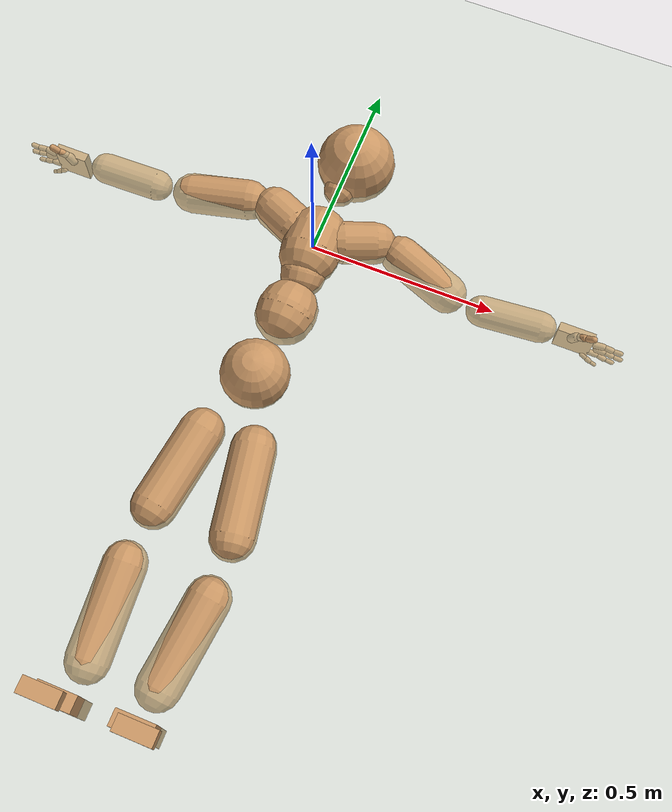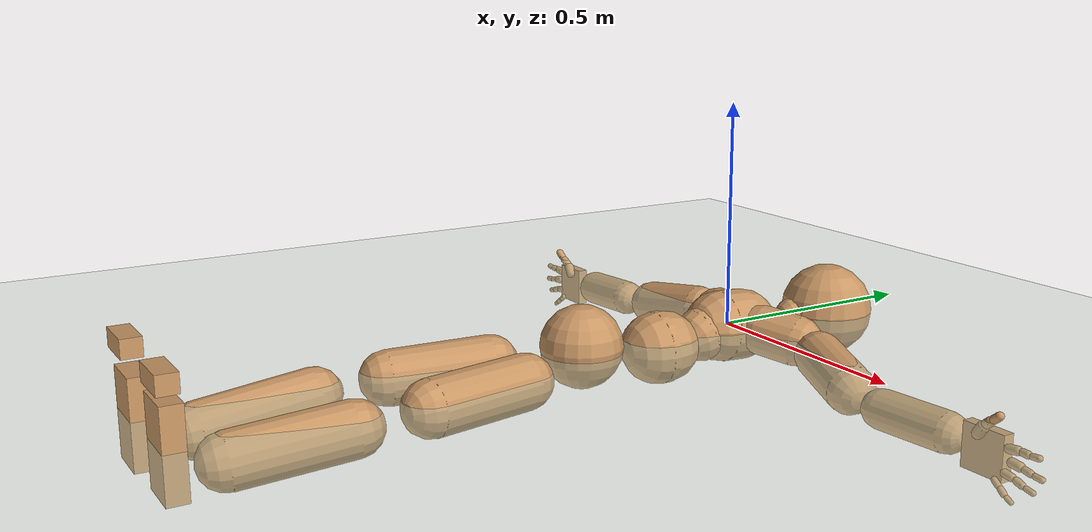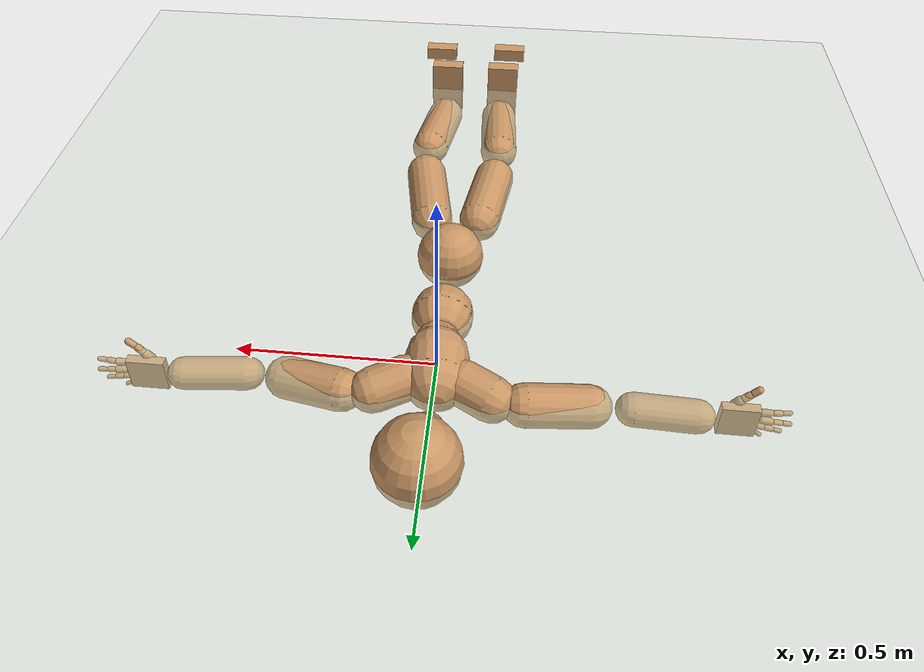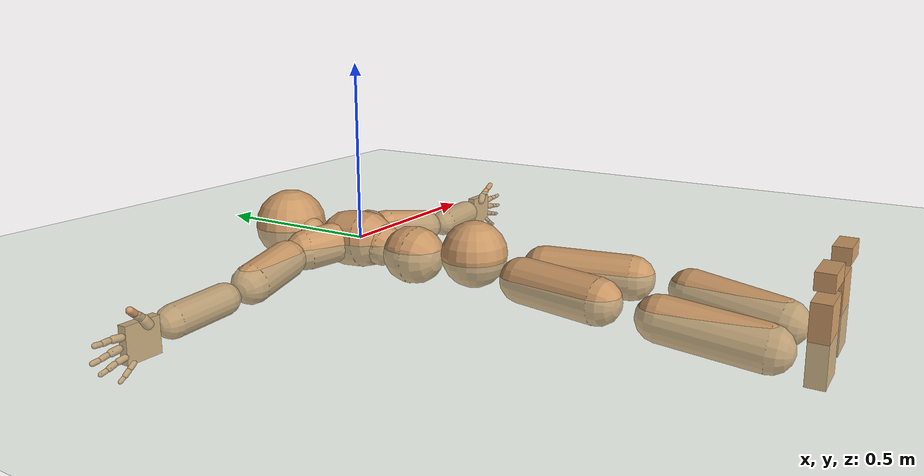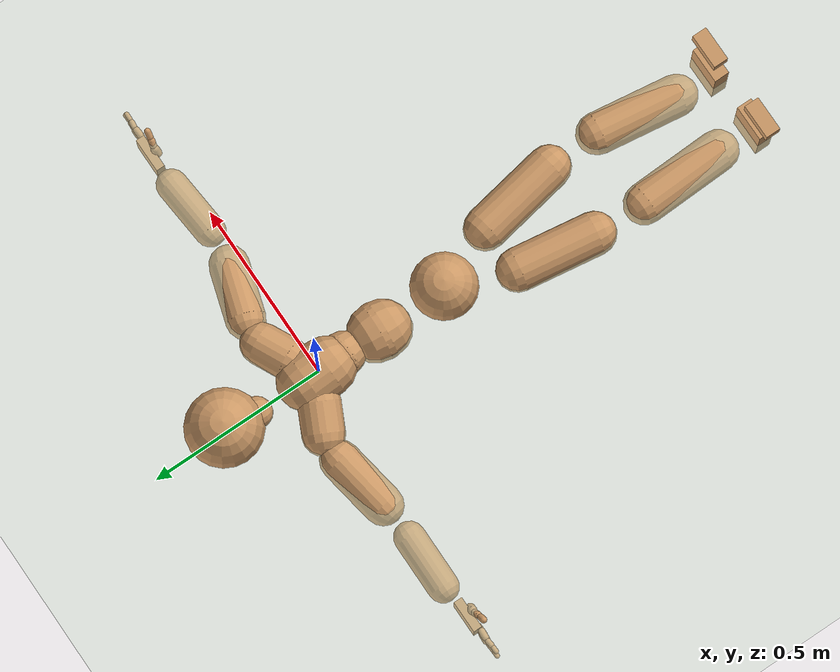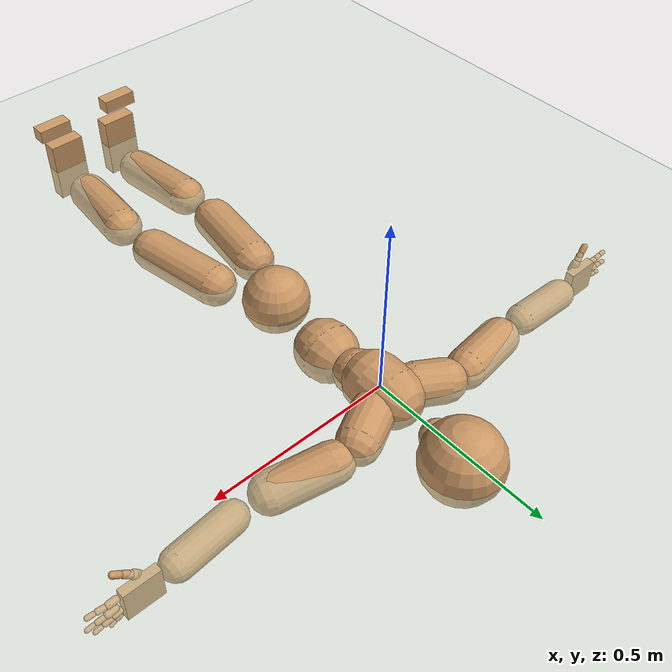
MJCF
<?xml version='1.0' encoding='utf-8'?>
<mujoco model="smplx_mapped_s29">
  <compiler coordinate="local" />
  <default>
    <joint damping="0.0" armature="0.01" stiffness="0.0" limited="true" />
    <geom conaffinity="1" condim="3" contype="7" margin="0.001" rgba="0.8 0.6 .4 1" />
  </default>
  <asset>
    <texture type="skybox" builtin="gradient" rgb1=".4 .5 .6" rgb2="0 0 0" width="100" height="100" />
    <texture builtin="flat" height="1278" mark="cross" markrgb="1 1 1" name="texgeom" random="0.01" rgb1="0.8 0.6 0.4" rgb2="0.8 0.6 0.4" type="cube" width="127" />
    <texture builtin="checker" height="100" name="texplane" rgb1="0 0 0" rgb2="0.8 0.8 0.8" type="2d" width="100" />
    <material name="MatPlane" reflectance="0.5" shininess="1" specular="1" texrepeat="60 60" texture="texplane" />
    <material name="geom" texture="texgeom" texuniform="true" />
  </asset>
  <worldbody>
    <light cutoff="100" diffuse="1 1 1" dir="-0 0 -1.3" directional="true" exponent="1" pos="0 0 1.3" specular=".1 .1 .1" />
    <geom conaffinity="1" condim="3" name="floor" pos="0 0 0" rgba="0.8 0.9 0.8 1" size="100 100 .2" type="plane" material="MatPlane" />
    <body name="Pelvis" pos="0.0010 -0.3891 0.0087">
      <freejoint name="Pelvis" />
      <geom type="sphere" contype="1" conaffinity="1" density="4629.6296296296305" size="0.09" pos="0.0000 0.0000 0.0000" name="Pelvis" />
      <body name="L_Hip" pos="0.0557 -0.0997 -0.0278">
        <joint name="L_Hip_x" type="hinge" pos="0 0 0" axis="1 0 0" stiffness="800" damping="80" armature="0.02" range="-180.00 180.00" />
        <joint name="L_Hip_y" type="hinge" pos="0 0 0" axis="0 1 0" stiffness="800" damping="80" armature="0.02" range="-180.00 180.00" />
        <joint name="L_Hip_z" type="hinge" pos="0 0 0" axis="0 0 1" stiffness="800" damping="80" armature="0.02" range="-180.00 180.00" />
        <geom type="capsule" contype="1" conaffinity="1" density="2040.816327" fromto="0.0138 -0.0760 -0.0005 0.0552 -0.3040 -0.0019" size="0.059" />
        <body name="L_Knee" pos="0.0691 -0.3799 -0.0024">
          <joint name="L_Knee_x" type="hinge" pos="0 0 0" axis="1 0 0" stiffness="800" damping="80" armature="0.02" range="-180.00 180.00" />
          <joint name="L_Knee_y" type="hinge" pos="0 0 0" axis="0 1 0" stiffness="800" damping="80" armature="0.02" range="-180.00 180.00" />
          <joint name="L_Knee_z" type="hinge" pos="0 0 0" axis="0 0 1" stiffness="800" damping="80" armature="0.02" range="-180.00 180.00" />
          <geom type="capsule" contype="1" conaffinity="1" density="1234.567901" fromto="-0.0095 -0.0774 -0.0084 -0.0382 -0.3098 -0.0334" size="0.0564" />
          <body name="L_Ankle" pos="-0.0477 -0.3872 -0.0418">
            <joint name="L_Ankle_x" type="hinge" pos="0 0 0" axis="1 0 0" stiffness="800" damping="80" armature="0.02" range="-180.00 180.00" />
            <joint name="L_Ankle_y" type="hinge" pos="0 0 0" axis="0 1 0" stiffness="800" damping="80" armature="0.02" range="-180.00 180.00" />
            <joint name="L_Ankle_z" type="hinge" pos="0 0 0" axis="0 0 1" stiffness="800" damping="80" armature="0.02" range="-180.00 180.00" />
            <geom type="box" contype="1" conaffinity="1" density="1000" pos="0.0115 -0.0234 0.0566" size="0.0502 0.0216 0.0909" quat="1.0000 0.0000 0.0000 0.0000" />
            <body name="L_Toe" pos="0.0443 -0.0546 0.1327">
              <joint name="L_Toe_x" type="hinge" pos="0 0 0" axis="1 0 0" stiffness="500" damping="50" armature="0.02" range="-180.00 180.00" />
              <joint name="L_Toe_y" type="hinge" pos="0 0 0" axis="0 1 0" stiffness="500" damping="50" armature="0.02" range="-180.00 180.00" />
              <joint name="L_Toe_z" type="hinge" pos="0 0 0" axis="0 0 1" stiffness="500" damping="50" armature="0.02" range="-180.00 180.00" />
              <geom type="box" contype="1" conaffinity="1" density="1000" pos="-0.0115 0.0227 0.0576" size="0.0493 0.0209 0.0194" quat="1.0000 0.0000 0.0000 0.0000" />
            </body>
          </body>
        </body>
      </body>
      <body name="R_Hip" pos="-0.0572 -0.1105 -0.0211">
        <joint name="R_Hip_x" type="hinge" pos="0 0 0" axis="1 0 0" stiffness="800" damping="80" armature="0.02" range="-180.00 180.00" />
        <joint name="R_Hip_y" type="hinge" pos="0 0 0" axis="0 1 0" stiffness="800" damping="80" armature="0.02" range="-180.00 180.00" />
        <joint name="R_Hip_z" type="hinge" pos="0 0 0" axis="0 0 1" stiffness="800" damping="80" armature="0.02" range="-180.00 180.00" />
        <geom type="capsule" contype="1" conaffinity="1" density="2040.816327" fromto="-0.0105 -0.0727 -0.0020 -0.0421 -0.2908 -0.0082" size="0.0588" />
        <body name="R_Knee" pos="-0.0526 -0.3635 -0.0102">
          <joint name="R_Knee_x" type="hinge" pos="0 0 0" axis="1 0 0" stiffness="800" damping="80" armature="0.02" range="-180.00 180.00" />
          <joint name="R_Knee_y" type="hinge" pos="0 0 0" axis="0 1 0" stiffness="800" damping="80" armature="0.02" range="-180.00 180.00" />
          <joint name="R_Knee_z" type="hinge" pos="0 0 0" axis="0 0 1" stiffness="800" damping="80" armature="0.02" range="-180.00 180.00" />
          <geom type="capsule" contype="1" conaffinity="1" density="1234.567901" fromto="0.0038 -0.0799 -0.0081 0.0153 -0.3197 -0.0322" size="0.0564" />
          <body name="R_Ankle" pos="0.0192 -0.3997 -0.0403">
            <joint name="R_Ankle_x" type="hinge" pos="0 0 0" axis="1 0 0" stiffness="800" damping="80" armature="0.02" range="-180.00 180.00" />
            <joint name="R_Ankle_y" type="hinge" pos="0 0 0" axis="0 1 0" stiffness="800" damping="80" armature="0.02" range="-180.00 180.00" />
            <joint name="R_Ankle_z" type="hinge" pos="0 0 0" axis="0 0 1" stiffness="800" damping="80" armature="0.02" range="-180.00 180.00" />
            <geom type="box" contype="1" conaffinity="1" density="1000" pos="-0.0091 -0.0250 0.0535" size="0.0502 0.0216 0.0909" quat="1.0000 0.0000 0.0000 0.0000" />
            <body name="R_Toe" pos="-0.0351 -0.0542 0.1391">
              <joint name="R_Toe_x" type="hinge" pos="0 0 0" axis="1 0 0" stiffness="500" damping="50" armature="0.02" range="-180.00 180.00" />
              <joint name="R_Toe_y" type="hinge" pos="0 0 0" axis="0 1 0" stiffness="500" damping="50" armature="0.02" range="-180.00 180.00" />
              <joint name="R_Toe_z" type="hinge" pos="0 0 0" axis="0 0 1" stiffness="500" damping="50" armature="0.02" range="-180.00 180.00" />
              <geom type="box" contype="1" conaffinity="1" density="1000" pos="0.0091 0.0243 0.0545" size="0.0493 0.0209 0.0194" quat="1.0000 0.0000 0.0000 0.0000" />
            </body>
          </body>
        </body>
      </body>
      <body name="Torso" pos="-0.0019 0.1184 -0.0357">
        <joint name="Torso_x" type="hinge" pos="0 0 0" axis="1 0 0" stiffness="1000" damping="100" armature="0.02" range="-180.00 180.00" />
        <joint name="Torso_y" type="hinge" pos="0 0 0" axis="0 1 0" stiffness="1000" damping="100" armature="0.02" range="-180.00 180.00" />
        <joint name="Torso_z" type="hinge" pos="0 0 0" axis="0 0 1" stiffness="1000" damping="100" armature="0.02" range="-180.00 180.00" />
        <geom type="capsule" contype="1" conaffinity="1" density="1100" fromto="0.0038 0.0735 0.0024 0.0046 0.0899 0.0030" size="0.08" />
        <body name="Spine" pos="0.0084 0.1634 0.0054">
          <joint name="Spine_x" type="hinge" pos="0 0 0" axis="1 0 0" stiffness="1000" damping="100" armature="0.02" range="-180.00 180.00" />
          <joint name="Spine_y" type="hinge" pos="0 0 0" axis="0 1 0" stiffness="1000" damping="100" armature="0.02" range="-180.00 180.00" />
          <joint name="Spine_z" type="hinge" pos="0 0 0" axis="0 0 1" stiffness="1000" damping="100" armature="0.02" range="-180.00 180.00" />
          <geom type="capsule" contype="1" conaffinity="1" density="1100" fromto="-0.0032 0.0284 0.0093 -0.0039 0.0347 0.0114" size="0.06" />
          <body name="Chest" pos="-0.0071 0.0630 0.0207">
            <joint name="Chest_x" type="hinge" pos="0 0 0" axis="1 0 0" stiffness="1000" damping="100" armature="0.02" range="-180.00 180.00" />
            <joint name="Chest_y" type="hinge" pos="0 0 0" axis="0 1 0" stiffness="1000" damping="100" armature="0.02" range="-180.00 180.00" />
            <joint name="Chest_z" type="hinge" pos="0 0 0" axis="0 0 1" stiffness="1000" damping="100" armature="0.02" range="-180.00 180.00" />
            <geom type="capsule" contype="1" conaffinity="1" density="1100" fromto="-0.0007 0.0211 -0.0012 -0.0028 0.0844 -0.0049" size="0.08" />
            <body name="Neck" pos="-0.0084 0.1633 -0.0161">
              <joint name="Neck_x" type="hinge" pos="0 0 0" axis="1 0 0" stiffness="500" damping="50" armature="0.02" range="-180.00 180.00" />
              <joint name="Neck_y" type="hinge" pos="0 0 0" axis="0 1 0" stiffness="500" damping="50" armature="0.02" range="-180.00 180.00" />
              <joint name="Neck_z" type="hinge" pos="0 0 0" axis="0 0 1" stiffness="500" damping="50" armature="0.02" range="-180.00 180.00" />
              <geom type="capsule" contype="1" conaffinity="1" density="1000" fromto="0.0102 0.0732 0.0075 0.0124 0.0895 0.0091" size="0.0437" />
              <body name="Head" pos="0.0226 0.1627 0.0166">
                <joint name="Head_x" type="hinge" pos="0 0 0" axis="1 0 0" stiffness="500" damping="50" armature="0.02" range="-180.00 180.00" />
                <joint name="Head_y" type="hinge" pos="0 0 0" axis="0 1 0" stiffness="500" damping="50" armature="0.02" range="-180.00 180.00" />
                <joint name="Head_z" type="hinge" pos="0 0 0" axis="0 0 1" stiffness="500" damping="50" armature="0.02" range="-180.00 180.00" />
                <geom type="sphere" contype="1" conaffinity="1" density="1000" size="0.1054" pos="0.0000 0.0000 0.0000" name="Head" />
              </body>
            </body>
            <body name="L_Thorax" pos="0.0398 0.0763 0.0009">
              <joint name="L_Thorax_x" type="hinge" pos="0 0 0" axis="1 0 0" stiffness="500" damping="50" armature="0.02" range="-180.00 180.00" />
              <joint name="L_Thorax_y" type="hinge" pos="0 0 0" axis="0 1 0" stiffness="500" damping="50" armature="0.02" range="-180.00 180.00" />
              <joint name="L_Thorax_z" type="hinge" pos="0 0 0" axis="0 0 1" stiffness="500" damping="50" armature="0.02" range="-180.00 180.00" />
              <geom type="capsule" contype="1" conaffinity="1" density="1000" fromto="0.0264 0.0123 -0.0041 0.1056 0.0493 -0.0163" size="0.0564" />
              <body name="L_Shoulder" pos="0.1320 0.0616 -0.0204">
                <joint name="L_Shoulder_x" type="hinge" pos="0 0 0" axis="1 0 0" stiffness="500" damping="50" armature="0.02" range="-180.00 180.00" />
                <joint name="L_Shoulder_y" type="hinge" pos="0 0 0" axis="0 1 0" stiffness="500" damping="50" armature="0.02" range="-180.00 180.00" />
                <joint name="L_Shoulder_z" type="hinge" pos="0 0 0" axis="0 0 1" stiffness="500" damping="50" armature="0.02" range="-180.00 180.00" />
                <geom type="capsule" contype="1" conaffinity="1" density="1000" fromto="0.0493 -0.0153 -0.0086 0.1974 -0.0611 -0.0343" size="0.0533" />
                <body name="L_Elbow" pos="0.2467 -0.0763 -0.0429">
                  <joint name="L_Elbow_x" type="hinge" pos="0 0 0" axis="1 0 0" stiffness="500" damping="50" armature="0.02" range="-180.00 180.00" />
                  <joint name="L_Elbow_y" type="hinge" pos="0 0 0" axis="0 1 0" stiffness="500" damping="50" armature="0.02" range="-180.00 180.00" />
                  <joint name="L_Elbow_z" type="hinge" pos="0 0 0" axis="0 0 1" stiffness="500" damping="50" armature="0.02" range="-180.00 180.00" />
                  <geom type="capsule" contype="1" conaffinity="1" density="1000" fromto="0.0530 0.0049 -0.0003 0.2121 0.0195 -0.0010" size="0.0418" />
                  <body name="L_Wrist" pos="0.252 0.0232 -0.0025">
                    <joint name="L_Wrist_x" type="hinge" pos="0 0 0" axis="1 0 0" stiffness="300" damping="30" armature="0.02" range="-180.0000 180.0000"/>
                    <joint name="L_Wrist_y" type="hinge" pos="0 0 0" axis="0 1 0" stiffness="300" damping="30" armature="0.02" range="-180.0000 180.0000"/>
                    <joint name="L_Wrist_z" type="hinge" pos="0 0 0" axis="0 0 1" stiffness="300" damping="30" armature="0.02" range="-180.0000 180.0000"/>
                    <geom type="box" density="1198.335972" pos="0.0523 -0.0013 -0.0031" size="0.0484 0.0122 0.046" quat="1.0000 0.0000 0.0000 0.0000" name="L_Wrist"/>
                    <body name="L_Index1" pos="0.1019 -0.0087 0.0194">
                      <joint name="L_Index1_x" type="hinge" pos="0 0 0" axis="1 0 0" stiffness="100" damping="10" armature="0.02" range="-5.6250 5.6250"/>
                      <joint name="L_Index1_y" type="hinge" pos="0 0 0" axis="0 1 0" stiffness="100" damping="10" armature="0.02" range="-5.6250 5.6250"/>
                      <joint name="L_Index1_z" type="hinge" pos="0 0 0" axis="0 0 1" stiffness="100" damping="10" armature="0.02" range="-55.6250 55.6250"/>
                      <geom type="capsule" contype="1" conaffinity="1" density="1000" fromto="0.0064 0.0004 0.0006 0.0256 0.0018 0.0024" size="0.0091" name="L_Index1"/>
                      <body name="L_Index2" pos="0.0319 0.0022 0.003">
                        <joint name="L_Index2_x" type="hinge" pos="0 0 0" axis="1 0 0" stiffness="100" damping="10" armature="0.02" range="-5.6250 5.6250"/>
                        <joint name="L_Index2_y" type="hinge" pos="0 0 0" axis="0 1 0" stiffness="100" damping="10" armature="0.02" range="-5.6250 5.6250"/>
                        <joint name="L_Index2_z" type="hinge" pos="0 0 0" axis="0 0 1" stiffness="100" damping="10" armature="0.02" range="-55.6250 55.6250"/>
                        <geom type="capsule" contype="1" conaffinity="1" density="1000" fromto="0.0045 -0.0005 0.0000 0.0180 -0.0019 0.0000" size="0.0076" name="L_Index2"/>
                        <body name="L_Index3" pos="0.0225 -0.0024 0.0001">
                          <joint name="L_Index3_x" type="hinge" pos="0 0 0" axis="1 0 0" stiffness="100" damping="10" armature="0.02" range="-5.6250 5.6250"/>
                          <joint name="L_Index3_y" type="hinge" pos="0 0 0" axis="0 1 0" stiffness="100" damping="10" armature="0.02" range="-5.6250 5.6250"/>
                          <joint name="L_Index3_z" type="hinge" pos="0 0 0" axis="0 0 1" stiffness="100" damping="10" armature="0.02" range="-90.0000 5.6250"/>
                          <geom type="capsule" contype="1" conaffinity="1" density="1000" fromto="0.0049 -0.0001 0.0004 0.0196 -0.0003 0.0016" size="0.0064" name="L_Index3"/>
                        </body>
                      </body>
                    </body>
                    <body name="L_Middle1" pos="0.1094 -0.0063 -0.004">
                      <joint name="L_Middle1_x" type="hinge" pos="0 0 0" axis="1 0 0" stiffness="100" damping="10" armature="0.02" range="-5.6250 5.6250"/>
                      <joint name="L_Middle1_y" type="hinge" pos="0 0 0" axis="0 1 0" stiffness="100" damping="10" armature="0.02" range="-5.6250 5.6250"/>
                      <joint name="L_Middle1_z" type="hinge" pos="0 0 0" axis="0 0 1" stiffness="100" damping="10" armature="0.02" range="-55.6250 55.6250"/>
                      <geom type="capsule" contype="1" conaffinity="1" density="1000" fromto="0.0061 0.0002 -0.0008 0.0245 0.0006 -0.0032" size="0.0094" name="L_Middle1"/>
                      <body name="L_Middle2" pos="0.0306 0.0008 -0.004">
                        <joint name="L_Middle2_x" type="hinge" pos="0 0 0" axis="1 0 0" stiffness="100" damping="10" armature="0.02" range="-5.6250 5.6250"/>
                        <joint name="L_Middle2_y" type="hinge" pos="0 0 0" axis="0 1 0" stiffness="100" damping="10" armature="0.02" range="-5.6250 5.6250"/>
                        <joint name="L_Middle2_z" type="hinge" pos="0 0 0" axis="0 0 1" stiffness="100" damping="10" armature="0.02" range="-55.6250 55.6250"/>
                        <geom type="capsule" contype="1" conaffinity="1" density="1000" fromto="0.0047 -0.0004 -0.0008 0.0188 -0.0016 -0.0033" size="0.007" name="L_Middle2"/>
                        <body name="L_Middle3" pos="0.0235 -0.002 -0.0041">
                          <joint name="L_Middle3_x" type="hinge" pos="0 0 0" axis="1 0 0" stiffness="100" damping="10" armature="0.02" range="-5.6250 5.6250"/>
                          <joint name="L_Middle3_y" type="hinge" pos="0 0 0" axis="0 1 0" stiffness="100" damping="10" armature="0.02" range="-5.6250 5.6250"/>
                          <joint name="L_Middle3_z" type="hinge" pos="0 0 0" axis="0 0 1" stiffness="100" damping="10" armature="0.02" range="-90.0000 5.6250"/>
                          <geom type="capsule" contype="1" conaffinity="1" density="1000" fromto="0.0051 -0.0000 -0.0004 0.0204 -0.0000 -0.0017" size="0.0061" name="L_Middle3"/>
                        </body>
                      </body>
                    </body>
                    <body name="L_Pinky1" pos="0.084 -0.0145 -0.0437">
                      <joint name="L_Pinky1_x" type="hinge" pos="0 0 0" axis="1 0 0" stiffness="100" damping="10" armature="0.02" range="-5.6250 5.6250"/>
                      <joint name="L_Pinky1_y" type="hinge" pos="0 0 0" axis="0 1 0" stiffness="100" damping="10" armature="0.02" range="-5.6250 5.6250"/>
                      <joint name="L_Pinky1_z" type="hinge" pos="0 0 0" axis="0 0 1" stiffness="100" damping="10" armature="0.02" range="-55.6250 55.6250"/>
                      <geom type="capsule" contype="1" conaffinity="1" density="1000" fromto="0.0031 -0.0002 -0.0024 0.0124 -0.0009 -0.0096" size="0.0067" name="L_Pinky1"/>
                      <body name="L_Pinky2" pos="0.0155 -0.0011 -0.012">
                        <joint name="L_Pinky2_x" type="hinge" pos="0 0 0" axis="1 0 0" stiffness="100" damping="10" armature="0.02" range="-5.6250 5.6250"/>
                        <joint name="L_Pinky2_y" type="hinge" pos="0 0 0" axis="0 1 0" stiffness="100" damping="10" armature="0.02" range="-5.6250 5.6250"/>
                        <joint name="L_Pinky2_z" type="hinge" pos="0 0 0" axis="0 0 1" stiffness="100" damping="10" armature="0.02" range="-55.6250 55.6250"/>
                        <geom type="capsule" contype="1" conaffinity="1" density="1000" fromto="0.0031 -0.0003 -0.0022 0.0124 -0.0013 -0.0090" size="0.0065" name="L_Pinky2"/>
                        <body name="L_Pinky3" pos="0.0155 -0.0017 -0.0112">
                          <joint name="L_Pinky3_x" type="hinge" pos="0 0 0" axis="1 0 0" stiffness="100" damping="10" armature="0.02" range="-5.6250 5.6250"/>
                          <joint name="L_Pinky3_y" type="hinge" pos="0 0 0" axis="0 1 0" stiffness="100" damping="10" armature="0.02" range="-5.6250 5.6250"/>
                          <joint name="L_Pinky3_z" type="hinge" pos="0 0 0" axis="0 0 1" stiffness="100" damping="10" armature="0.02" range="-90.0000 5.6250"/>
                          <geom type="capsule" contype="1" conaffinity="1" density="1000" fromto="0.0035 0.0001 -0.0018 0.0140 0.0003 -0.0074" size="0.005" name="L_Pinky3"/>
                        </body>
                      </body>
                    </body>
                    <body name="L_Ring1" pos="0.0974 -0.0093 -0.0273">
                      <joint name="L_Ring1_x" type="hinge" pos="0 0 0" axis="1 0 0" stiffness="100" damping="10" armature="0.02" range="-5.6250 5.6250"/>
                      <joint name="L_Ring1_y" type="hinge" pos="0 0 0" axis="0 1 0" stiffness="100" damping="10" armature="0.02" range="-5.6250 5.6250"/>
                      <joint name="L_Ring1_z" type="hinge" pos="0 0 0" axis="0 0 1" stiffness="100" damping="10" armature="0.02" range="-55.6250 55.6250"/>
                      <geom type="capsule" contype="1" conaffinity="1" density="1000" fromto="0.0056 0.0003 -0.0011 0.0224 0.0012 -0.0042" size="0.008" name="L_Ring1"/>
                      <body name="L_Ring2" pos="0.028 0.0015 -0.0053">
                        <joint name="L_Ring2_x" type="hinge" pos="0 0 0" axis="1 0 0" stiffness="100" damping="10" armature="0.02" range="-5.6250 5.6250"/>
                        <joint name="L_Ring2_y" type="hinge" pos="0 0 0" axis="0 1 0" stiffness="100" damping="10" armature="0.02" range="-5.6250 5.6250"/>
                        <joint name="L_Ring2_z" type="hinge" pos="0 0 0" axis="0 0 1" stiffness="100" damping="10" armature="0.02" range="-55.6250 55.6250"/>
                        <geom type="capsule" contype="1" conaffinity="1" density="1000" fromto="0.0046 -0.0003 -0.0014 0.0183 -0.0012 -0.0057" size="0.0074" name="L_Ring2"/>
                        <body name="L_Ring3" pos="0.0228 -0.0015 -0.0071">
                          <joint name="L_Ring3_x" type="hinge" pos="0 0 0" axis="1 0 0" stiffness="100" damping="10" armature="0.02" range="-5.6250 5.6250"/>
                          <joint name="L_Ring3_y" type="hinge" pos="0 0 0" axis="0 1 0" stiffness="100" damping="10" armature="0.02" range="-5.6250 5.6250"/>
                          <joint name="L_Ring3_z" type="hinge" pos="0 0 0" axis="0 0 1" stiffness="100" damping="10" armature="0.02" range="-90.0000 5.6250"/>
                          <geom type="capsule" contype="1" conaffinity="1" density="1000" fromto="0.0050 0.0001 -0.0010 0.0199 0.0004 -0.0041" size="0.0057" name="L_Ring3"/>
                        </body>
                      </body>
                    </body>
                    <body name="L_Thumb1" pos="0.0406 -0.018 0.0256">
                      <joint name="L_Thumb1_x" type="hinge" pos="0 0 0" axis="1 0 0" stiffness="100" damping="10" armature="0.02" range="-55.6250 55.6250"/>
                      <joint name="L_Thumb1_y" type="hinge" pos="0 0 0" axis="0 1 0" stiffness="100" damping="10" armature="0.02" range="-55.6250 55.6250"/>
                      <joint name="L_Thumb1_z" type="hinge" pos="0 0 0" axis="0 0 1" stiffness="100" damping="10" armature="0.02" range="-55.6250 55.6250"/>
                      <geom type="capsule" contype="1" conaffinity="1" density="1000" fromto="0.0034 0.0002 0.0050 0.0136 0.0008 0.0200" size="0.012" name="L_Thumb1"/>
                      <body name="L_Thumb2" pos="0.017 0.001 0.025">
                        <joint name="L_Thumb2_x" type="hinge" pos="0 0 0" axis="1 0 0" stiffness="100" damping="10" armature="0.02" range="-5.6250 5.6250"/>
                        <joint name="L_Thumb2_y" type="hinge" pos="0 0 0" axis="0 1 0" stiffness="100" damping="10" armature="0.02" range="-5.6250 5.6250"/>
                        <joint name="L_Thumb2_z" type="hinge" pos="0 0 0" axis="0 0 1" stiffness="100" damping="10" armature="0.02" range="-5.6250 5.6250"/>
                        <geom type="capsule" contype="1" conaffinity="1" density="1000" fromto="0.0041 -0.0010 0.0031 0.0164 -0.0041 0.0124" size="0.0095" name="L_Thumb2"/>
                        <body name="L_Thumb3" pos="0.0205 -0.0052 0.0155">
                          <joint name="L_Thumb3_x" type="hinge" pos="0 0 0" axis="1 0 0" stiffness="100" damping="10" armature="0.02" range="-5.6250 5.6250"/>
                          <joint name="L_Thumb3_y" type="hinge" pos="0 0 0" axis="0 1 0" stiffness="100" damping="10" armature="0.02" range="-5.6250 5.6250"/>
                          <joint name="L_Thumb3_z" type="hinge" pos="0 0 0" axis="0 0 1" stiffness="100" damping="10" armature="0.02" range="-90.0000 5.6250"/>
                          <geom type="capsule" contype="1" conaffinity="1" density="1000" fromto="0.0045 -0.0006 0.0035 0.0180 -0.0025 0.0140" size="0.0087" name="L_Thumb3"/>
                        </body>
                      </body>
                    </body>
                  </body>
                </body>
              </body>
            </body>
            <body name="R_Thorax" pos="-0.0420 0.0768 -0.0031">
              <joint name="R_Thorax_x" type="hinge" pos="0 0 0" axis="1 0 0" stiffness="500" damping="50" armature="0.02" range="-180.00 180.00" />
              <joint name="R_Thorax_y" type="hinge" pos="0 0 0" axis="0 1 0" stiffness="500" damping="50" armature="0.02" range="-180.00 180.00" />
              <joint name="R_Thorax_z" type="hinge" pos="0 0 0" axis="0 0 1" stiffness="500" damping="50" armature="0.02" range="-180.00 180.00" />
              <geom type="capsule" contype="1" conaffinity="1" density="1000" fromto="-0.0246 0.0120 -0.0031 -0.0986 0.0480 -0.0122" size="0.0576" />
              <body name="R_Shoulder" pos="-0.1232 0.0600 -0.0153">
                <joint name="R_Shoulder_x" type="hinge" pos="0 0 0" axis="1 0 0" stiffness="500" damping="50" armature="0.02" range="-180.00 180.00" />
                <joint name="R_Shoulder_y" type="hinge" pos="0 0 0" axis="0 1 0" stiffness="500" damping="50" armature="0.02" range="-180.00 180.00" />
                <joint name="R_Shoulder_z" type="hinge" pos="0 0 0" axis="0 0 1" stiffness="500" damping="50" armature="0.02" range="-180.00 180.00" />
                <geom type="capsule" contype="1" conaffinity="1" density="1000" fromto="-0.0525 -0.0095 -0.0065 -0.2099 -0.0379 -0.0261" size="0.0538" />
                <body name="R_Elbow" pos="-0.2623 -0.0474 -0.0327">
                  <joint name="R_Elbow_x" type="hinge" pos="0 0 0" axis="1 0 0" stiffness="500" damping="50" armature="0.02" range="-180.00 180.00" />
                  <joint name="R_Elbow_y" type="hinge" pos="0 0 0" axis="0 1 0" stiffness="500" damping="50" armature="0.02" range="-180.00 180.00" />
                  <joint name="R_Elbow_z" type="hinge" pos="0 0 0" axis="0 0 1" stiffness="500" damping="50" armature="0.02" range="-180.00 180.00" />
                  <geom type="capsule" contype="1" conaffinity="1" density="1000" fromto="-0.0514 0.0000 -0.0024 -0.2058 0.0001 -0.0095" size="0.042" />
                  <body name="R_Wrist" pos="-0.2493 -0.0045 -0.0153">
                    <joint name="R_Wrist_x" type="hinge" pos="0 0 0" axis="1 0 0" stiffness="300" damping="30" armature="0.02" range="-180.0000 180.0000"/>
                    <joint name="R_Wrist_y" type="hinge" pos="0 0 0" axis="0 1 0" stiffness="300" damping="30" armature="0.02" range="-180.0000 180.0000"/>
                    <joint name="R_Wrist_z" type="hinge" pos="0 0 0" axis="0 0 1" stiffness="300" damping="30" armature="0.02" range="-180.0000 180.0000"/>
                    <geom type="box" density="1230.822844" pos="-0.0537 -0.0044 -0.0029" size="0.0454 0.0122 0.046" quat="1.0000 0.0000 0.0000 0.0000" name="R_Wrist"/>
                    <body name="R_Index1" pos="-0.0999 -0.0118 0.0196">
                      <joint name="R_Index1_x" type="hinge" pos="0 0 0" axis="1 0 0" stiffness="100" damping="10" armature="0.02" range="-5.6250 5.6250"/>
                      <joint name="R_Index1_y" type="hinge" pos="0 0 0" axis="0 1 0" stiffness="100" damping="10" armature="0.02" range="-5.6250 5.6250"/>
                      <joint name="R_Index1_z" type="hinge" pos="0 0 0" axis="0 0 1" stiffness="100" damping="10" armature="0.02" range="-55.6250 55.6250"/>
                      <geom type="capsule" contype="1" conaffinity="1" density="1000" fromto="-0.0064 0.0004 0.0006 -0.0256 0.0018 0.0024" size="0.0091" name="R_Index1"/>
                      <body name="R_Index2" pos="-0.0319 0.0022 0.003">
                        <joint name="R_Index2_x" type="hinge" pos="0 0 0" axis="1 0 0" stiffness="100" damping="10" armature="0.02" range="-5.6250 5.6250"/>
                        <joint name="R_Index2_y" type="hinge" pos="0 0 0" axis="0 1 0" stiffness="100" damping="10" armature="0.02" range="-5.6250 5.6250"/>
                        <joint name="R_Index2_z" type="hinge" pos="0 0 0" axis="0 0 1" stiffness="100" damping="10" armature="0.02" range="-55.6250 55.6250"/>
                        <geom type="capsule" contype="1" conaffinity="1" density="1000" fromto="-0.0045 -0.0005 0.0000 -0.0180 -0.0019 0.0000" size="0.0076" name="R_Index2"/>
                        <body name="R_Index3" pos="-0.0225 -0.0023 0.0001">
                          <joint name="R_Index3_x" type="hinge" pos="0 0 0" axis="1 0 0" stiffness="100" damping="10" armature="0.02" range="-5.6250 5.6250"/>
                          <joint name="R_Index3_y" type="hinge" pos="0 0 0" axis="0 1 0" stiffness="100" damping="10" armature="0.02" range="-5.6250 5.6250"/>
                          <joint name="R_Index3_z" type="hinge" pos="0 0 0" axis="0 0 1" stiffness="100" damping="10" armature="0.02" range="-5.6250 90.0000"/>
                          <geom type="capsule" contype="1" conaffinity="1" density="1000" fromto="-0.0041 -0.0001 0.0004 -0.0164 -0.0003 0.0016" size="0.0067" name="R_Index3"/>
                        </body>
                      </body>
                    </body>
                    <body name="R_Middle1" pos="-0.1074 -0.0094 -0.0037">
                      <joint name="R_Middle1_x" type="hinge" pos="0 0 0" axis="1 0 0" stiffness="100" damping="10" armature="0.02" range="-5.6250 5.6250"/>
                      <joint name="R_Middle1_y" type="hinge" pos="0 0 0" axis="0 1 0" stiffness="100" damping="10" armature="0.02" range="-5.6250 5.6250"/>
                      <joint name="R_Middle1_z" type="hinge" pos="0 0 0" axis="0 0 1" stiffness="100" damping="10" armature="0.02" range="-55.6250 55.6250"/>
                      <geom type="capsule" contype="1" conaffinity="1" density="1000" fromto="-0.0061 0.0002 -0.0008 -0.0245 0.0006 -0.0032" size="0.0094" name="R_Middle1"/>
                      <body name="R_Middle2" pos="-0.0306 0.0008 -0.004">
                        <joint name="R_Middle2_x" type="hinge" pos="0 0 0" axis="1 0 0" stiffness="100" damping="10" armature="0.02" range="-5.6250 5.6250"/>
                        <joint name="R_Middle2_y" type="hinge" pos="0 0 0" axis="0 1 0" stiffness="100" damping="10" armature="0.02" range="-5.6250 5.6250"/>
                        <joint name="R_Middle2_z" type="hinge" pos="0 0 0" axis="0 0 1" stiffness="100" damping="10" armature="0.02" range="-55.6250 55.6250"/>
                        <geom type="capsule" contype="1" conaffinity="1" density="1000" fromto="-0.0047 -0.0004 -0.0008 -0.0188 -0.0016 -0.0033" size="0.007" name="R_Middle2"/>
                        <body name="R_Middle3" pos="-0.0235 -0.002 -0.0041">
                          <joint name="R_Middle3_x" type="hinge" pos="0 0 0" axis="1 0 0" stiffness="100" damping="10" armature="0.02" range="-5.6250 5.6250"/>
                          <joint name="R_Middle3_y" type="hinge" pos="0 0 0" axis="0 1 0" stiffness="100" damping="10" armature="0.02" range="-5.6250 5.6250"/>
                          <joint name="R_Middle3_z" type="hinge" pos="0 0 0" axis="0 0 1" stiffness="100" damping="10" armature="0.02" range="-5.6250 90.0000"/>
                          <geom type="capsule" contype="1" conaffinity="1" density="1000" fromto="-0.0043 -0.0000 -0.0004 -0.0172 -0.0000 -0.0017" size="0.0064" name="R_Middle3"/>
                        </body>
                      </body>
                    </body>
                    <body name="R_Pinky1" pos="-0.082 -0.0176 -0.0435">
                      <joint name="R_Pinky1_x" type="hinge" pos="0 0 0" axis="1 0 0" stiffness="100" damping="10" armature="0.02" range="-5.6250 5.6250"/>
                      <joint name="R_Pinky1_y" type="hinge" pos="0 0 0" axis="0 1 0" stiffness="100" damping="10" armature="0.02" range="-5.6250 5.6250"/>
                      <joint name="R_Pinky1_z" type="hinge" pos="0 0 0" axis="0 0 1" stiffness="100" damping="10" armature="0.02" range="-55.6250 55.6250"/>
                      <geom type="capsule" contype="1" conaffinity="1" density="1000" fromto="-0.0031 -0.0002 -0.0024 -0.0124 -0.0009 -0.0096" size="0.0067" name="R_Pinky1"/>
                      <body name="R_Pinky2" pos="-0.0155 -0.0011 -0.012">
                        <joint name="R_Pinky2_x" type="hinge" pos="0 0 0" axis="1 0 0" stiffness="100" damping="10" armature="0.02" range="-5.6250 5.6250"/>
                        <joint name="R_Pinky2_y" type="hinge" pos="0 0 0" axis="0 1 0" stiffness="100" damping="10" armature="0.02" range="-5.6250 5.6250"/>
                        <joint name="R_Pinky2_z" type="hinge" pos="0 0 0" axis="0 0 1" stiffness="100" damping="10" armature="0.02" range="-55.6250 55.6250"/>
                        <geom type="capsule" contype="1" conaffinity="1" density="1000" fromto="-0.0031 -0.0003 -0.0022 -0.0124 -0.0013 -0.0090" size="0.0065" name="R_Pinky2"/>
                        <body name="R_Pinky3" pos="-0.0155 -0.0017 -0.0112">
                          <joint name="R_Pinky3_x" type="hinge" pos="0 0 0" axis="1 0 0" stiffness="100" damping="10" armature="0.02" range="-5.6250 5.6250"/>
                          <joint name="R_Pinky3_y" type="hinge" pos="0 0 0" axis="0 1 0" stiffness="100" damping="10" armature="0.02" range="-5.6250 5.6250"/>
                          <joint name="R_Pinky3_z" type="hinge" pos="0 0 0" axis="0 0 1" stiffness="100" damping="10" armature="0.02" range="-5.6250 90.0000"/>
                          <geom type="capsule" contype="1" conaffinity="1" density="1000" fromto="-0.0027 0.0001 -0.0018 -0.0108 0.0003 -0.0074" size="0.0052" name="R_Pinky3"/>
                        </body>
                      </body>
                    </body>
                    <body name="R_Ring1" pos="-0.0954 -0.0124 -0.0271">
                      <joint name="R_Ring1_x" type="hinge" pos="0 0 0" axis="1 0 0" stiffness="100" damping="10" armature="0.02" range="-5.6250 5.6250"/>
                      <joint name="R_Ring1_y" type="hinge" pos="0 0 0" axis="0 1 0" stiffness="100" damping="10" armature="0.02" range="-5.6250 5.6250"/>
                      <joint name="R_Ring1_z" type="hinge" pos="0 0 0" axis="0 0 1" stiffness="100" damping="10" armature="0.02" range="-55.6250 55.6250"/>
                      <geom type="capsule" contype="1" conaffinity="1" density="1000" fromto="-0.0056 0.0003 -0.0011 -0.0224 0.0012 -0.0042" size="0.008" name="R_Ring1"/>
                      <body name="R_Ring2" pos="-0.028 0.0015 -0.0053">
                        <joint name="R_Ring2_x" type="hinge" pos="0 0 0" axis="1 0 0" stiffness="100" damping="10" armature="0.02" range="-5.6250 5.6250"/>
                        <joint name="R_Ring2_y" type="hinge" pos="0 0 0" axis="0 1 0" stiffness="100" damping="10" armature="0.02" range="-5.6250 5.6250"/>
                        <joint name="R_Ring2_z" type="hinge" pos="0 0 0" axis="0 0 1" stiffness="100" damping="10" armature="0.02" range="-55.6250 55.6250"/>
                        <geom type="capsule" contype="1" conaffinity="1" density="1000" fromto="-0.0046 -0.0003 -0.0014 -0.0183 -0.0012 -0.0057" size="0.0074" name="R_Ring2"/>
                        <body name="R_Ring3" pos="-0.0228 -0.0015 -0.0071">
                          <joint name="R_Ring3_x" type="hinge" pos="0 0 0" axis="1 0 0" stiffness="100" damping="10" armature="0.02" range="-5.6250 5.6250"/>
                          <joint name="R_Ring3_y" type="hinge" pos="0 0 0" axis="0 1 0" stiffness="100" damping="10" armature="0.02" range="-5.6250 5.6250"/>
                          <joint name="R_Ring3_z" type="hinge" pos="0 0 0" axis="0 0 1" stiffness="100" damping="10" armature="0.02" range="-5.6250 90.0000"/>
                          <geom type="capsule" contype="1" conaffinity="1" density="1000" fromto="-0.0042 0.0001 -0.0010 -0.0167 0.0004 -0.0041" size="0.006" name="R_Ring3"/>
                        </body>
                      </body>
                    </body>
                    <body name="R_Thumb1" pos="-0.0386 -0.0211 0.0259">
                      <joint name="R_Thumb1_x" type="hinge" pos="0 0 0" axis="1 0 0" stiffness="100" damping="10" armature="0.02" range="-55.6250 55.6250"/>
                      <joint name="R_Thumb1_y" type="hinge" pos="0 0 0" axis="0 1 0" stiffness="100" damping="10" armature="0.02" range="-55.6250 55.6250"/>
                      <joint name="R_Thumb1_z" type="hinge" pos="0 0 0" axis="0 0 1" stiffness="100" damping="10" armature="0.02" range="-55.6250 55.6250"/>
                      <geom type="capsule" contype="1" conaffinity="1" density="1000" fromto="-0.0034 0.0002 0.0050 -0.0136 0.0008 0.0200" size="0.012" name="R_Thumb1"/>
                      <body name="R_Thumb2" pos="-0.017 0.001 0.025">
                        <joint name="R_Thumb2_x" type="hinge" pos="0 0 0" axis="1 0 0" stiffness="100" damping="10" armature="0.02" range="-5.6250 5.6250"/>
                        <joint name="R_Thumb2_y" type="hinge" pos="0 0 0" axis="0 1 0" stiffness="100" damping="10" armature="0.02" range="-5.6250 5.6250"/>
                        <joint name="R_Thumb2_z" type="hinge" pos="0 0 0" axis="0 0 1" stiffness="100" damping="10" armature="0.02" range="-5.6250 5.6250"/>
                        <geom type="capsule" contype="1" conaffinity="1" density="1000" fromto="-0.0041 -0.0010 0.0031 -0.0164 -0.0041 0.0124" size="0.0095" name="R_Thumb2"/>
                        <body name="R_Thumb3" pos="-0.0205 -0.0052 0.0155">
                          <joint name="R_Thumb3_x" type="hinge" pos="0 0 0" axis="1 0 0" stiffness="100" damping="10" armature="0.02" range="-5.6250 5.6250"/>
                          <joint name="R_Thumb3_y" type="hinge" pos="0 0 0" axis="0 1 0" stiffness="100" damping="10" armature="0.02" range="-5.6250 5.6250"/>
                          <joint name="R_Thumb3_z" type="hinge" pos="0 0 0" axis="0 0 1" stiffness="100" damping="10" armature="0.02" range="-5.6250 90.0000"/>
                          <geom type="capsule" contype="1" conaffinity="1" density="1000" fromto="-0.0037 -0.0006 0.0035 -0.0148 -0.0025 0.0140" size="0.009" name="R_Thumb3"/>
                        </body>
                      </body>
                    </body>
                  </body>
                </body>
              </body>
            </body>
          </body>
        </body>
      </body>
    </body>
  </worldbody>
  <actuator>
    <motor name="L_Hip_x" joint="L_Hip_x" gear="1" />
    <motor name="L_Hip_y" joint="L_Hip_y" gear="1" />
    <motor name="L_Hip_z" joint="L_Hip_z" gear="1" />
    <motor name="L_Knee_x" joint="L_Knee_x" gear="1" />
    <motor name="L_Knee_y" joint="L_Knee_y" gear="1" />
    <motor name="L_Knee_z" joint="L_Knee_z" gear="1" />
    <motor name="L_Ankle_x" joint="L_Ankle_x" gear="1" />
    <motor name="L_Ankle_y" joint="L_Ankle_y" gear="1" />
    <motor name="L_Ankle_z" joint="L_Ankle_z" gear="1" />
    <motor name="L_Toe_x" joint="L_Toe_x" gear="1" />
    <motor name="L_Toe_y" joint="L_Toe_y" gear="1" />
    <motor name="L_Toe_z" joint="L_Toe_z" gear="1" />
    <motor name="R_Hip_x" joint="R_Hip_x" gear="1" />
    <motor name="R_Hip_y" joint="R_Hip_y" gear="1" />
    <motor name="R_Hip_z" joint="R_Hip_z" gear="1" />
    <motor name="R_Knee_x" joint="R_Knee_x" gear="1" />
    <motor name="R_Knee_y" joint="R_Knee_y" gear="1" />
    <motor name="R_Knee_z" joint="R_Knee_z" gear="1" />
    <motor name="R_Ankle_x" joint="R_Ankle_x" gear="1" />
    <motor name="R_Ankle_y" joint="R_Ankle_y" gear="1" />
    <motor name="R_Ankle_z" joint="R_Ankle_z" gear="1" />
    <motor name="R_Toe_x" joint="R_Toe_x" gear="1" />
    <motor name="R_Toe_y" joint="R_Toe_y" gear="1" />
    <motor name="R_Toe_z" joint="R_Toe_z" gear="1" />
    <motor name="Torso_x" joint="Torso_x" gear="1" />
    <motor name="Torso_y" joint="Torso_y" gear="1" />
    <motor name="Torso_z" joint="Torso_z" gear="1" />
    <motor name="Spine_x" joint="Spine_x" gear="1" />
    <motor name="Spine_y" joint="Spine_y" gear="1" />
    <motor name="Spine_z" joint="Spine_z" gear="1" />
    <motor name="Chest_x" joint="Chest_x" gear="1" />
    <motor name="Chest_y" joint="Chest_y" gear="1" />
    <motor name="Chest_z" joint="Chest_z" gear="1" />
    <motor name="Neck_x" joint="Neck_x" gear="1" />
    <motor name="Neck_y" joint="Neck_y" gear="1" />
    <motor name="Neck_z" joint="Neck_z" gear="1" />
    <motor name="Head_x" joint="Head_x" gear="1" />
    <motor name="Head_y" joint="Head_y" gear="1" />
    <motor name="Head_z" joint="Head_z" gear="1" />
    <motor name="L_Thorax_x" joint="L_Thorax_x" gear="1" />
    <motor name="L_Thorax_y" joint="L_Thorax_y" gear="1" />
    <motor name="L_Thorax_z" joint="L_Thorax_z" gear="1" />
    <motor name="L_Shoulder_x" joint="L_Shoulder_x" gear="1" />
    <motor name="L_Shoulder_y" joint="L_Shoulder_y" gear="1" />
    <motor name="L_Shoulder_z" joint="L_Shoulder_z" gear="1" />
    <motor name="L_Elbow_x" joint="L_Elbow_x" gear="1" />
    <motor name="L_Elbow_y" joint="L_Elbow_y" gear="1" />
    <motor name="L_Elbow_z" joint="L_Elbow_z" gear="1" />
    <motor name="L_Wrist_x" joint="L_Wrist_x" gear="1" />
    <motor name="L_Wrist_y" joint="L_Wrist_y" gear="1" />
    <motor name="L_Wrist_z" joint="L_Wrist_z" gear="1" />
    <motor name="L_Index1_x" joint="L_Index1_x" gear="1" />
    <motor name="L_Index1_y" joint="L_Index1_y" gear="1" />
    <motor name="L_Index1_z" joint="L_Index1_z" gear="1" />
    <motor name="L_Index2_x" joint="L_Index2_x" gear="1" />
    <motor name="L_Index2_y" joint="L_Index2_y" gear="1" />
    <motor name="L_Index2_z" joint="L_Index2_z" gear="1" />
    <motor name="L_Index3_x" joint="L_Index3_x" gear="1" />
    <motor name="L_Index3_y" joint="L_Index3_y" gear="1" />
    <motor name="L_Index3_z" joint="L_Index3_z" gear="1" />
    <motor name="L_Middle1_x" joint="L_Middle1_x" gear="1" />
    <motor name="L_Middle1_y" joint="L_Middle1_y" gear="1" />
    <motor name="L_Middle1_z" joint="L_Middle1_z" gear="1" />
    <motor name="L_Middle2_x" joint="L_Middle2_x" gear="1" />
    <motor name="L_Middle2_y" joint="L_Middle2_y" gear="1" />
    <motor name="L_Middle2_z" joint="L_Middle2_z" gear="1" />
    <motor name="L_Middle3_x" joint="L_Middle3_x" gear="1" />
    <motor name="L_Middle3_y" joint="L_Middle3_y" gear="1" />
    <motor name="L_Middle3_z" joint="L_Middle3_z" gear="1" />
    <motor name="L_Pinky1_x" joint="L_Pinky1_x" gear="1" />
    <motor name="L_Pinky1_y" joint="L_Pinky1_y" gear="1" />
    <motor name="L_Pinky1_z" joint="L_Pinky1_z" gear="1" />
    <motor name="L_Pinky2_x" joint="L_Pinky2_x" gear="1" />
    <motor name="L_Pinky2_y" joint="L_Pinky2_y" gear="1" />
    <motor name="L_Pinky2_z" joint="L_Pinky2_z" gear="1" />
    <motor name="L_Pinky3_x" joint="L_Pinky3_x" gear="1" />
    <motor name="L_Pinky3_y" joint="L_Pinky3_y" gear="1" />
    <motor name="L_Pinky3_z" joint="L_Pinky3_z" gear="1" />
    <motor name="L_Ring1_x" joint="L_Ring1_x" gear="1" />
    <motor name="L_Ring1_y" joint="L_Ring1_y" gear="1" />
    <motor name="L_Ring1_z" joint="L_Ring1_z" gear="1" />
    <motor name="L_Ring2_x" joint="L_Ring2_x" gear="1" />
    <motor name="L_Ring2_y" joint="L_Ring2_y" gear="1" />
    <motor name="L_Ring2_z" joint="L_Ring2_z" gear="1" />
    <motor name="L_Ring3_x" joint="L_Ring3_x" gear="1" />
    <motor name="L_Ring3_y" joint="L_Ring3_y" gear="1" />
    <motor name="L_Ring3_z" joint="L_Ring3_z" gear="1" />
    <motor name="L_Thumb1_x" joint="L_Thumb1_x" gear="1" />
    <motor name="L_Thumb1_y" joint="L_Thumb1_y" gear="1" />
    <motor name="L_Thumb1_z" joint="L_Thumb1_z" gear="1" />
    <motor name="L_Thumb2_x" joint="L_Thumb2_x" gear="1" />
    <motor name="L_Thumb2_y" joint="L_Thumb2_y" gear="1" />
    <motor name="L_Thumb2_z" joint="L_Thumb2_z" gear="1" />
    <motor name="L_Thumb3_x" joint="L_Thumb3_x" gear="1" />
    <motor name="L_Thumb3_y" joint="L_Thumb3_y" gear="1" />
    <motor name="L_Thumb3_z" joint="L_Thumb3_z" gear="1" />
    <motor name="R_Thorax_x" joint="R_Thorax_x" gear="1" />
    <motor name="R_Thorax_y" joint="R_Thorax_y" gear="1" />
    <motor name="R_Thorax_z" joint="R_Thorax_z" gear="1" />
    <motor name="R_Shoulder_x" joint="R_Shoulder_x" gear="1" />
    <motor name="R_Shoulder_y" joint="R_Shoulder_y" gear="1" />
    <motor name="R_Shoulder_z" joint="R_Shoulder_z" gear="1" />
    <motor name="R_Elbow_x" joint="R_Elbow_x" gear="1" />
    <motor name="R_Elbow_y" joint="R_Elbow_y" gear="1" />
    <motor name="R_Elbow_z" joint="R_Elbow_z" gear="1" />
    <motor name="R_Wrist_x" joint="R_Wrist_x" gear="1" />
    <motor name="R_Wrist_y" joint="R_Wrist_y" gear="1" />
    <motor name="R_Wrist_z" joint="R_Wrist_z" gear="1" />
    <motor name="R_Index1_x" joint="R_Index1_x" gear="1" />
    <motor name="R_Index1_y" joint="R_Index1_y" gear="1" />
    <motor name="R_Index1_z" joint="R_Index1_z" gear="1" />
    <motor name="R_Index2_x" joint="R_Index2_x" gear="1" />
    <motor name="R_Index2_y" joint="R_Index2_y" gear="1" />
    <motor name="R_Index2_z" joint="R_Index2_z" gear="1" />
    <motor name="R_Index3_x" joint="R_Index3_x" gear="1" />
    <motor name="R_Index3_y" joint="R_Index3_y" gear="1" />
    <motor name="R_Index3_z" joint="R_Index3_z" gear="1" />
    <motor name="R_Middle1_x" joint="R_Middle1_x" gear="1" />
    <motor name="R_Middle1_y" joint="R_Middle1_y" gear="1" />
    <motor name="R_Middle1_z" joint="R_Middle1_z" gear="1" />
    <motor name="R_Middle2_x" joint="R_Middle2_x" gear="1" />
    <motor name="R_Middle2_y" joint="R_Middle2_y" gear="1" />
    <motor name="R_Middle2_z" joint="R_Middle2_z" gear="1" />
    <motor name="R_Middle3_x" joint="R_Middle3_x" gear="1" />
    <motor name="R_Middle3_y" joint="R_Middle3_y" gear="1" />
    <motor name="R_Middle3_z" joint="R_Middle3_z" gear="1" />
    <motor name="R_Pinky1_x" joint="R_Pinky1_x" gear="1" />
    <motor name="R_Pinky1_y" joint="R_Pinky1_y" gear="1" />
    <motor name="R_Pinky1_z" joint="R_Pinky1_z" gear="1" />
    <motor name="R_Pinky2_x" joint="R_Pinky2_x" gear="1" />
    <motor name="R_Pinky2_y" joint="R_Pinky2_y" gear="1" />
    <motor name="R_Pinky2_z" joint="R_Pinky2_z" gear="1" />
    <motor name="R_Pinky3_x" joint="R_Pinky3_x" gear="1" />
    <motor name="R_Pinky3_y" joint="R_Pinky3_y" gear="1" />
    <motor name="R_Pinky3_z" joint="R_Pinky3_z" gear="1" />
    <motor name="R_Ring1_x" joint="R_Ring1_x" gear="1" />
    <motor name="R_Ring1_y" joint="R_Ring1_y" gear="1" />
    <motor name="R_Ring1_z" joint="R_Ring1_z" gear="1" />
    <motor name="R_Ring2_x" joint="R_Ring2_x" gear="1" />
    <motor name="R_Ring2_y" joint="R_Ring2_y" gear="1" />
    <motor name="R_Ring2_z" joint="R_Ring2_z" gear="1" />
    <motor name="R_Ring3_x" joint="R_Ring3_x" gear="1" />
    <motor name="R_Ring3_y" joint="R_Ring3_y" gear="1" />
    <motor name="R_Ring3_z" joint="R_Ring3_z" gear="1" />
    <motor name="R_Thumb1_x" joint="R_Thumb1_x" gear="1" />
    <motor name="R_Thumb1_y" joint="R_Thumb1_y" gear="1" />
    <motor name="R_Thumb1_z" joint="R_Thumb1_z" gear="1" />
    <motor name="R_Thumb2_x" joint="R_Thumb2_x" gear="1" />
    <motor name="R_Thumb2_y" joint="R_Thumb2_y" gear="1" />
    <motor name="R_Thumb2_z" joint="R_Thumb2_z" gear="1" />
    <motor name="R_Thumb3_x" joint="R_Thumb3_x" gear="1" />
    <motor name="R_Thumb3_y" joint="R_Thumb3_y" gear="1" />
    <motor name="R_Thumb3_z" joint="R_Thumb3_z" gear="1" />
  </actuator>
  <contact />
  <sensor />
  <size njmax="700" nconmax="700" />
</mujoco>
